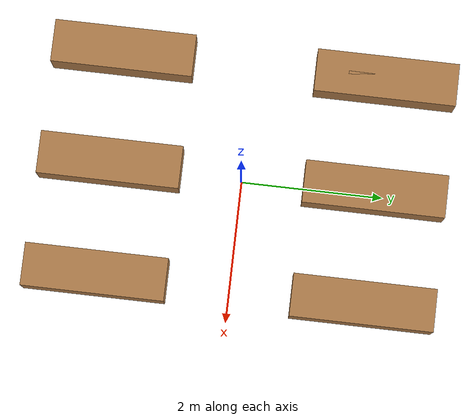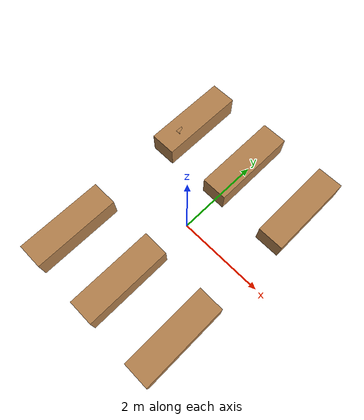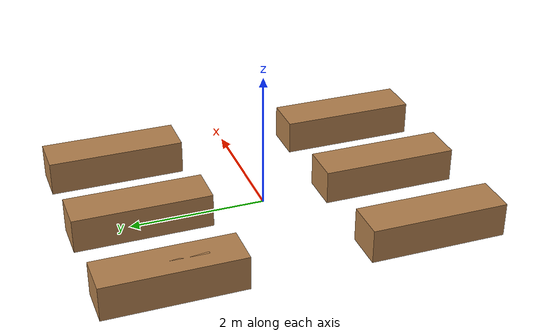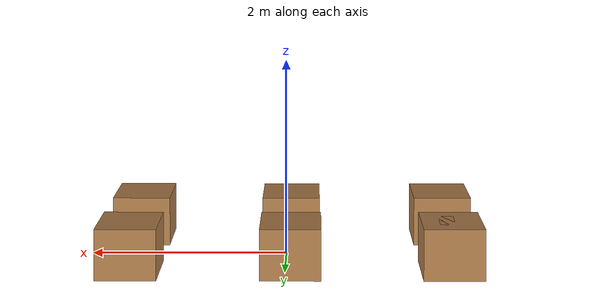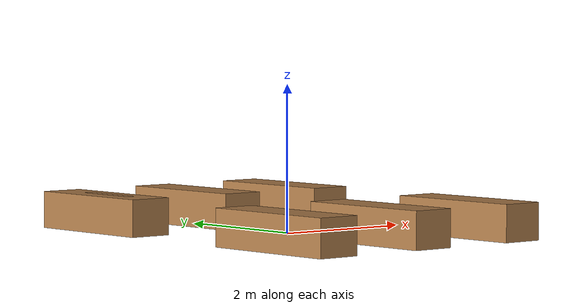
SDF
<?xml version='1.0'?>
<sdf version='1.6'>
  <model name='inner_walls'>
    <pose frame=''>0 0 0 0 0 0</pose>
    <link name='inner_wall_1'>
      <collision name='inner_wall_1_collision'>
        <geometry>
          <box>
            <size>2 0.6 0.5</size>
          </box>
        </geometry>
        <pose frame=''>0 0 0.25 0 -0 0</pose>
      </collision>
      <visual name='inner_wall_visual'>
        <pose frame=''>0 0 0.25 0 -0 0</pose>
        <geometry>
          <box>
            <size>2 0.6 0.5</size>
          </box>
        </geometry>
        <material>
          <script>
            <uri>file://media/materials/scripts/gazebo.material</uri>
            <name>Gazebo/Wood</name>
          </script>
          <ambient>1 1 1 1</ambient>
        </material>
      </visual>
      <pose frame=''>1.53996 1.87002 0 0 0 -1.5708</pose>
    </link>
    <link name='inner_wall_2'>
      <collision name='inner_wall_2_collision'>
        <geometry>
          <box>
            <size>2 0.6 0.5</size>
          </box>
        </geometry>
        <pose frame=''>0 0 0.25 0 -0 0</pose>
      </collision>
      <visual name='inner_wall_2_visual'>
        <pose frame=''>0 0 0.25 0 -0 0</pose>
        <geometry>
          <box>
            <size>2 0.6 0.5</size>
          </box>
        </geometry>
        <material>
          <script>
            <uri>file://media/materials/scripts/gazebo.material</uri>
            <name>Gazebo/Wood</name>
          </script>
          <ambient>1 1 1 1</ambient>
        </material>
      </visual>
      <pose frame=''>-0.05598 1.87207 0 0 0 -1.5708</pose>
    </link>
    <link name='inner_wall_3'>
      <collision name='inner_wall_3_collision'>
        <geometry>
          <box>
            <size>2 0.6 0.5</size>
          </box>
        </geometry>
        <pose frame=''>0 0 0.25 0 -0 0</pose>
      </collision>
      <visual name='inner_wall_3_visual'>
        <pose frame=''>0 0 0.25 0 -0 0</pose>
        <geometry>
          <box>
            <size>2 0.6 0.5</size>
          </box>
        </geometry>
        <material>
          <script>
            <uri>file://media/materials/scripts/gazebo.material</uri>
            <name>Gazebo/Wood</name>
          </script>
          <ambient>1 1 1 1</ambient>
        </material>
      </visual>
      <pose frame=''>1.53635 -1.87516 0 0 0 -1.5708</pose>
    </link>
    <link name='inner_wall_4'>
      <collision name='inner_wall_4_collision'>
        <geometry>
          <box>
            <size>2 0.6 0.5</size>
          </box>
        </geometry>
        <pose frame=''>0 0 0.25 0 -0 0</pose>
      </collision>
      <visual name='inner_wall_4_visual'>
        <pose frame=''>0 0 0.25 0 -0 0</pose>
        <geometry>
          <box>
            <size>2 0.6 0.5</size>
          </box>
        </geometry>
        <material>
          <script>
            <uri>file://media/materials/scripts/gazebo.material</uri>
            <name>Gazebo/Wood</name>
          </script>
          <ambient>1 1 1 1</ambient>
        </material>
      </visual>
      <pose frame=''>-1.6449 1.86655 0 0 0 -1.5708</pose>
    </link>
    <link name='inner_wall_5'>
      <collision name='inner_wall_5_collision'>
        <geometry>
          <box>
            <size>2 0.6 0.5</size>
          </box>
        </geometry>
        <pose frame=''>0 0 0.25 0 -0 0</pose>
      </collision>
      <visual name='inner_wall_5_visual'>
        <pose frame=''>0 0 0.25 0 -0 0</pose>
        <geometry>
          <box>
            <size>2 0.6 0.5</size>
          </box>
        </geometry>
        <material>
          <script>
            <uri>file://media/materials/scripts/gazebo.material</uri>
            <name>Gazebo/Wood</name>
          </script>
          <ambient>1 1 1 1</ambient>
        </material>
      </visual>
      <pose frame=''>-1.64538 -1.85922 0 0 0 -1.5708</pose>
    </link>
    <link name='inner_wall_6'>
      <collision name='inner_wall_6_collision'>
        <geometry>
          <box>
            <size>2 0.6 0.5</size>
          </box>
        </geometry>
        <pose frame=''>0 0 0.25 0 -0 0</pose>
      </collision>
      <visual name='inner_wall_6_visual'>
        <pose frame=''>0 0 0.25 0 -0 0</pose>
        <geometry>
          <box>
            <size>2 0.6 0.5</size>
          </box>
        </geometry>
        <material>
          <script>
            <uri>file://media/materials/scripts/gazebo.material</uri>
            <name>Gazebo/Wood</name>
          </script>
          <ambient>1 1 1 1</ambient>
        </material>
      </visual>
      <pose frame=''>-0.047199 -1.85813 0 0 0 -1.5708</pose>
    </link>
    <link name='inner_wall_7'>
      <collision name='inner_wall_7_collision'>
        <geometry>
          <box>
            <size>1 0.15 0.5</size>
          </box>
        </geometry>
        <pose frame=''>0 0 0.25 0 -0 0</pose>
      </collision>
      <visual name='inner_wall_7_visual'>
        <pose frame=''>0 0 0.25 0 -0 0</pose>
        <geometry>
          <box>
            <size>1 0.15 0.5</size>
          </box>
        </geometry>
        <material>
          <script>
            <uri>file://media/materials/scripts/gazebo.material</uri>
            <name>Gazebo/Wood</name>
          </script>
          <ambient>1 1 1 1</ambient>
        </material>
      </visual>
      <pose frame=''>-1.60018 1.82859 0 0 -0 1.56159</pose>
    </link>
    <static>1</static>
  </model>
</sdf>
